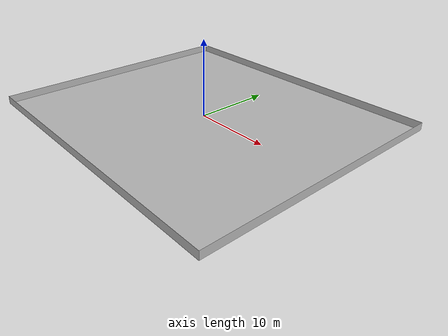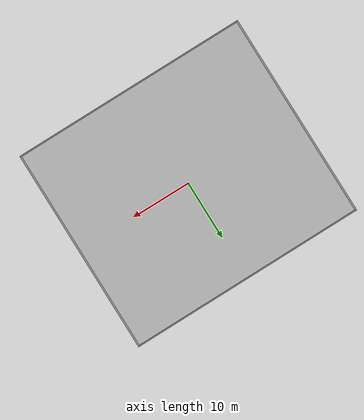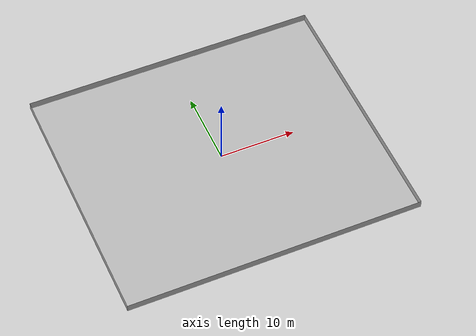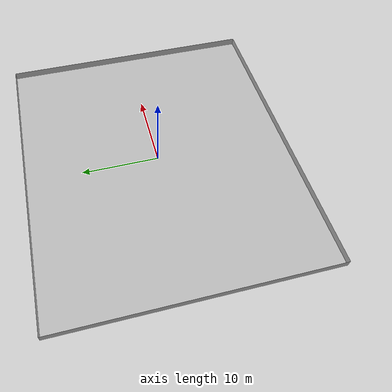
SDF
<?xml version="1.0"?>
<sdf version="1.4">
<world name="penbay_pro">
  <scene>
    <ambient>0.5 0.5 0.5 1.0</ambient>
    <shadows>0</shadows>
    <sky></sky>
  </scene>
  <include>
    <uri>model://sun</uri>
    <pose>0.0 0.0 15.0 0 0 0</pose>
    <cast_shadows>false</cast_shadows>
    <attenuation>
      <constant>0.5</constant>
      <linear>0.01</linear>
      <quadratic>0.0</quadratic>
      <range>100</range>
    </attenuation>
  </include>
  <light type="point" name="Light 1">
         <pose>0 0 15 0 0 0</pose>
         <diffuse>0.225 0.225 0.225 1</diffuse>
         <specular>.1 .1 .1 1</specular>
         <attenuation>
                <constant>0.4</constant>
                <linear>0.01</linear>
                <quadratic>0.00</quadratic>
                <range>50</range>
         </attenuation>
         <direction>0 0 -1</direction>
         <cast_shadows>false</cast_shadows>
  </light>
  <include>
    <uri>model://models/penbay_pro</uri>
    <pose>0 0 0 0 0 0</pose>
    <name>racetrack</name>
  </include>
</world>
</sdf>

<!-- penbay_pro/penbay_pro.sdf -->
<sdf version="1.4">
<model name="penbay_pro_model">
<link name="track">
<collision name="collision">
<pose>0 0 0 0 0 0</pose>
<geometry>
<mesh>
<uri>model://meshes/penbay_pro/penbay_pro_collision.dae</uri>
</mesh>
</geometry>
</collision>
<visual name="visual">
<pose>0 0 0 0 0 0</pose>
<geometry>
<mesh>
<uri>model://meshes/penbay_pro/penbay_pro.dae</uri>
</mesh>
</geometry>
</visual>
</link>
<static>1</static>
</model>
</sdf>
